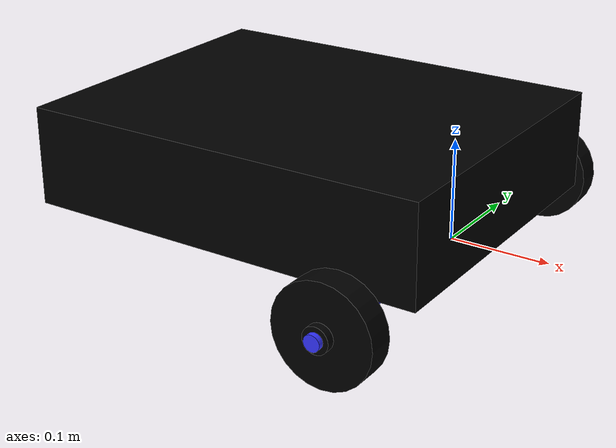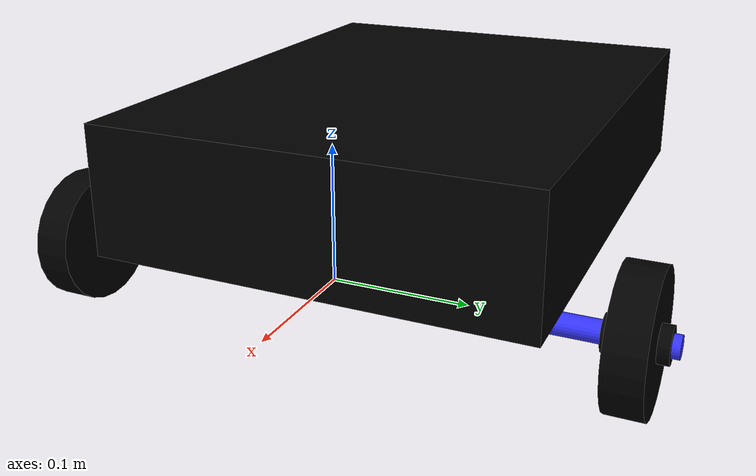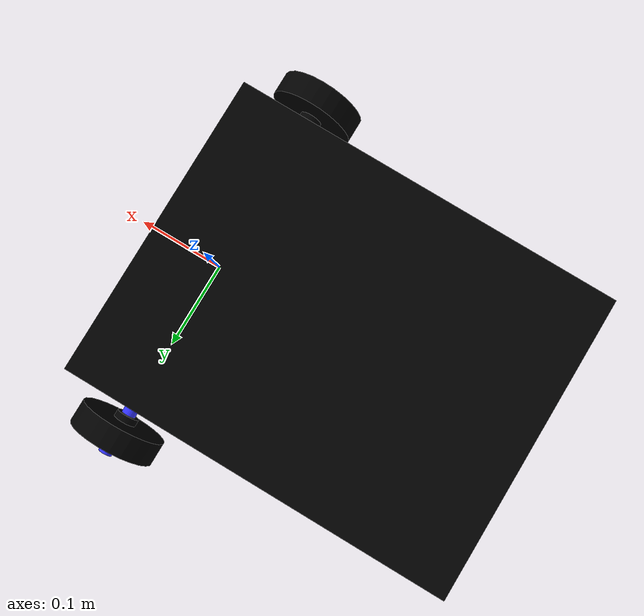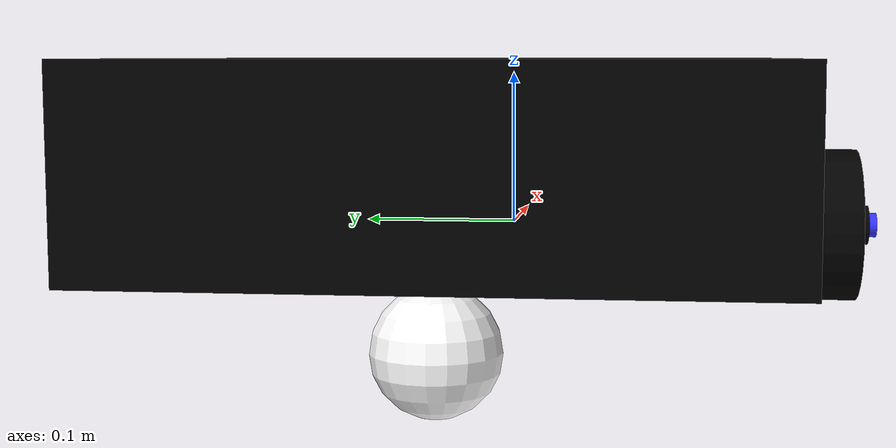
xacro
<?xml version="1.0"?>
<robot xmlns:xacro="http://www.ros.org/wiki/xacro" >

    <xacro:include filename="inertial_macros.xacro"/>

    <xacro:property name="chassis_length" value="0.422"/>                       <!--comprimento chassis-->
    <xacro:property name="chassis_width" value="0.330"/>                        <!--largura chassis-->
    <xacro:property name="chassis_height" value="0.100"/>               <!--altura chassis-->
    <xacro:property name="chassis_mass" value="6.000"/>             <!--massa chassis total 7.15 kg-->
    <xacro:property name="wheel_radius" value="0.050"/>                     <!--raio roda-->
    <xacro:property name="wheel_thickness" value="0.027"/>                  <!--espessura roda-->
    <xacro:property name="wheel_mass" value="0.525"/>               <!--massa roda-->
    <xacro:property name="wheel_radius_b" value="0.013"/>               <!--raio roda interior-->
    <xacro:property name="wheel_thickness_b" value="0.043"/>                <!--espessura roda interior-->
    <xacro:property name="wheel_offset_x" value="0.368"/>               <!--offset roda X-->
    <xacro:property name="wheel_offset_y" value="0.213"/>               <!--offset roda Y-->
    <xacro:property name="wheel_offset_z" value="-0.010"/>              <!--offset roda Z-->
    <xacro:property name="axis_radius" value="0.008"/>              <!--raio eixo-->
    <xacro:property name="axis_thickness" value="0.480"/>               <!--espessura eixo-->
    <xacro:property name="axis_mass" value="0.100"/>                <!--massa eixo-->
    <xacro:property name="axis_offset_x" value="0.368"/>                <!--offset eixo X-->
    <xacro:property name="axis_offset_y" value="0.000"/>                <!--offset eixo Y-->
    <xacro:property name="axis_offset_z" value="-0.010"/>               <!--offset eixo Z-->
    <xacro:property name="caster_wheel_radius" value="0.030"/>          <!--raio roda livre-->
    <xacro:property name="caster_wheel_mass" value="0.100"/>            <!--massa roda livre-->
    <xacro:property name="caster_wheel_offset_x" value="0.031"/>            <!--offset roda livre X-->
    <xacro:property name="caster_wheel_offset_z" value="${wheel_offset_z - wheel_radius + caster_wheel_radius}"/>

    <material name="white">
        <color rgba="1 1 1 1" />
    </material>

    <material name="orange">
        <color rgba="1 0.3 0.1 1"/>
    </material>

    <material name="blue">
        <color rgba="0.2 0.2 1 1"/>
    </material>

    <material name="black">
        <color rgba="0 0 0 1"/>
    </material>

    <material name="red">
        <color rgba="1 0 0 1"/>
    </material>

    <!-- BASE LINK -->

    <link name="base_link">

    </link>

    <!-- BASE_FOOTPRINT LINK -->

    <joint name="base_footprint_joint" type="fixed">
        <parent link="base_link"/>
        <child link="base_footprint"/>
        <origin xyz="0 0 0" rpy="0 0 0"/>
    </joint>

    <link name="base_footprint">
    </link>

    <!-- CHASSIS LINK -->

    <joint name="chassis_joint" type="fixed">
        <parent link="base_link"/>
        <child link="chassis"/>
        <origin xyz="${-wheel_offset_x} 0 ${-wheel_offset_z}"/>
    </joint>

    <link name="chassis">
        <visual>
            <origin xyz="${chassis_length/2} 0 ${chassis_height/2}"/>
            <geometry>
                <box size="${chassis_length} ${chassis_width} ${chassis_height}"/>
            </geometry>
            <material name="black"/>
        </visual>
        <collision>
            <origin xyz="${chassis_length/2} 0 ${chassis_height/2}"/>
            <geometry>
                <box size="${chassis_length} ${chassis_width} ${chassis_height}"/>
            </geometry>
        </collision>
        <xacro:inertial_box mass="0.5" x="${chassis_length}" y="${chassis_width}" z="${chassis_height}">
            <origin xyz="${chassis_length/2} 0 ${chassis_height/2}" rpy="0 0 0"/>
        </xacro:inertial_box>
    </link>

    <gazebo reference="chassis">
        <material>Gazebo/Black</material>
    </gazebo>

    <!-- LEFT WHEEL LINK -->

    <joint name="left_wheel_joint" type="continuous">
        <parent link="base_link"/>
        <child link="left_wheel"/>
        <origin xyz="0 ${wheel_offset_y} 0" rpy="-${pi/2} 0 0" />
        <axis xyz="0 0 1"/>
    </joint>

    <link name="left_wheel">
        <visual>
            <geometry>
                <cylinder radius="${wheel_radius}" length="${wheel_thickness}"/>
            </geometry>
            <material name="black"/>
        </visual>
        <visual>
            <origin xyz="0 0 0"/>
            <geometry>
                <cylinder radius="${wheel_radius_b}" length="${wheel_thickness_b}"/>
            </geometry>
            <material name="black"/>
        </visual>
        <collision>
            <geometry>
                <sphere radius="${wheel_radius}"/>
            </geometry>
        </collision>
        <xacro:inertial_cylinder mass="${wheel_mass}" length="${wheel_thickness}" radius="${wheel_radius}">
            <origin xyz="0 0 0" rpy="0 0 0"/>
        </xacro:inertial_cylinder>
    </link>

    <gazebo reference="left_wheel">
        <material>Gazebo/Black</material>
    </gazebo>

    <!-- RIGHT WHEEL LINK -->

    <joint name="right_wheel_joint" type="continuous">
        <parent link="base_link"/>
        <child link="right_wheel"/>
        <origin xyz="0 ${-wheel_offset_y} 0" rpy="${pi/2} 0 0" />
        <axis xyz="0 0 -1"/>
    </joint>

    <link name="right_wheel">
        <visual>
            <geometry>
                <cylinder radius="${wheel_radius}" length="${wheel_thickness}"/>
            </geometry>
            <material name="black"/>
        </visual>
        <visual>
            <origin xyz="0 0 0"/>
            <geometry>
                <cylinder radius="${wheel_radius_b}" length="${wheel_thickness_b}"/>
            </geometry>
            <material name="black"/>
        </visual>
        <collision>
            <geometry>
                <sphere radius="${wheel_radius}"/>
            </geometry>
        </collision>
        <xacro:inertial_cylinder mass="${wheel_mass}" length="${wheel_thickness}" radius="${wheel_radius}">
            <origin xyz="0 0 0" rpy="0 0 0"/>
        </xacro:inertial_cylinder>
    </link>

    <gazebo reference="right_wheel">
        <material>Gazebo/Black</material>
    </gazebo>

    <!-- AXIS LINK -->

    <joint name="axis_joint" type="fixed">
        <parent link="base_link"/>
        <child link="axis"/>
        <origin xyz="0 ${-axis_offset_y} 0" rpy="${pi/2} 0 0" />
        <axis xyz="0 0 -1"/>
    </joint>

    <link name="axis">
        <visual>
            <geometry>
                <cylinder radius="${axis_radius}" length="${axis_thickness}"/>
            </geometry>
            <material name="blue"/>
        </visual>
        <collision>
            <geometry>
                <sphere radius="${axis_radius}"/>
            </geometry>
        </collision>
        <xacro:inertial_cylinder mass="${axis_mass}" length="${axis_thickness}" radius="${axis_radius}">
            <origin xyz="0 0 0" rpy="0 0 0"/>
        </xacro:inertial_cylinder>
    </link>

    <gazebo reference="axis">
        <material>Gazebo/Blue</material>
    </gazebo>

    <!-- CASTER WHEEL LINK -->

    <joint name="caster_wheel_joint" type="fixed">
        <parent link="chassis"/>
        <child link="caster_wheel"/>
        <origin xyz="${caster_wheel_offset_x} 0 ${caster_wheel_offset_z}"/>
    </joint>

    <link name="caster_wheel">
        <visual>
            <geometry>
                <sphere radius="${caster_wheel_radius}"/>
            </geometry>
            <material name="white"/>
        </visual>
        <collision>
            <geometry>
                <sphere radius="${caster_wheel_radius}"/>
            </geometry>
        </collision>
        <xacro:inertial_sphere mass="${caster_wheel_mass}" radius="${caster_wheel_radius}">
            <origin xyz="0 0 0" rpy="0 0 0"/>
        </xacro:inertial_sphere>
    </link>

    <gazebo reference="caster_wheel">
        <material>Gazebo/White</material>
        <mu1 value="0.001"/>
        <mu2 value="0.001"/>
    </gazebo>

</robot>
